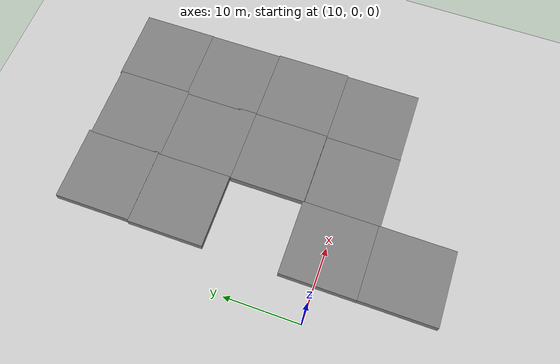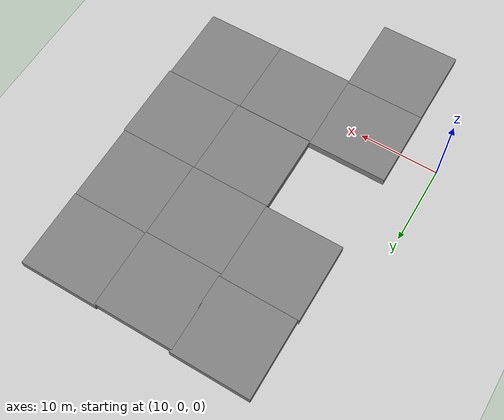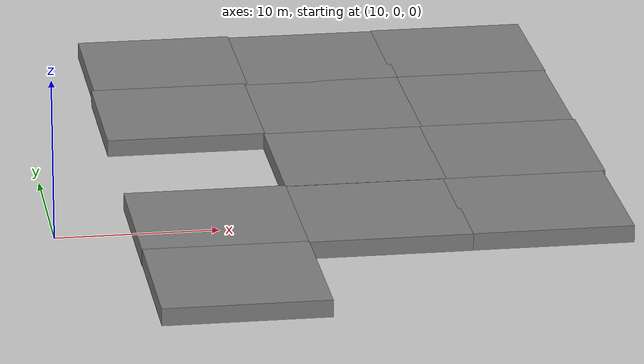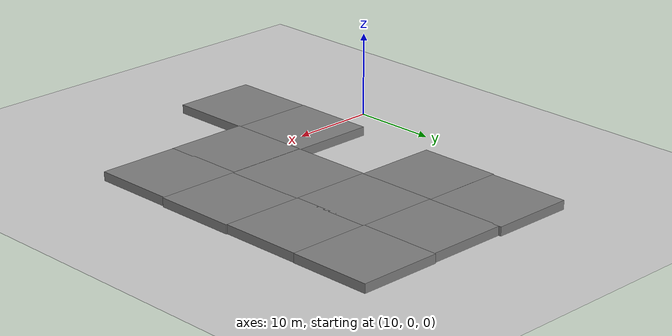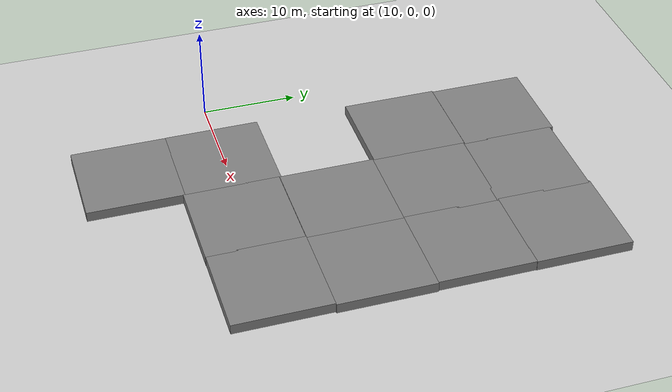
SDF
<sdf version="1.7">
 <world name="default">
  <model name="ground_plane">
   <static>1</static>
   <link name="link">
    <collision name="collision">
     <geometry><plane><normal>0 0 1</normal><size>100 100</size></plane></geometry>
     <surface>
      <contact><collide_bitmask>65535</collide_bitmask></contact>
      <friction><ode><mu>100</mu><mu2>50</mu2></ode></friction>
     </surface>
    </collision>
    <visual name="visual">
     <cast_shadows>0</cast_shadows>
     <geometry><plane><normal>0 0 1</normal><size>100 100</size></plane></geometry>
     <material>
      <script><uri>file://media/materials/scripts/gazebo.material</uri><name>Gazebo/Grey</name></script>
     </material>
    </visual>
   </link>
  </model>
  <model name="farm_clone_0_clone_1_clone_1_clone_17">
   <link name="link">
    <inertial>
     <mass>1</mass>
     <inertia><ixx>1</ixx><ixy>0</ixy><ixz>0</ixz><iyy>1</iyy><iyz>0</iyz><izz>1</izz></inertia>
    </inertial>
    <visual name="visual_1">
     <pose>2 2.5 0 0 -0 0</pose>
     <cast_shadows>0</cast_shadows>
     <geometry><box><size>10 10 2</size></box></geometry>
     <material>
      <script>
       <uri>model://mud_box/materials/scripts</uri>
       <uri>model://mud_box/materials/textures</uri>
       <name>vrc/mud</name>
      </script>
      <shader type="pixel"><normal_map>__default__</normal_map></shader>
      <ambient>0.5 0.5 0.5 1</ambient>
      <diffuse>0.5 0.5 0.5 1</diffuse>
      <specular>0.2 0.2 0.2 1</specular>
      <emissive>0 0 0 1</emissive>
     </material>
    </visual>
    <visual name="visual_2">
     <pose>2 2.5 0 0 -0 0</pose>
     <cast_shadows>0</cast_shadows>
     <geometry><box><size>10 10 2</size></box></geometry>
     <material>
      <script>
       <uri>model://mud_box/materials/scripts</uri>
       <uri>model://mud_box/materials/textures</uri>
       <name>vrc/mud</name>
      </script>
      <shader type="pixel"><normal_map>__default__</normal_map></shader>
      <ambient>0.5 0.5 0.5 1</ambient>
      <diffuse>0.5 0.5 0.5 1</diffuse>
      <specular>0.2 0.2 0.2 1</specular>
      <emissive>0 0 0 1</emissive>
     </material>
    </visual>
    <visual name="visual_4">
     <pose>2 2.5 0 0 -0 0</pose>
     <cast_shadows>0</cast_shadows>
     <geometry><box><size>10 10 2</size></box></geometry>
     <material>
      <script>
       <uri>model://mud_box/materials/scripts</uri>
       <uri>model://mud_box/materials/textures</uri>
       <name>vrc/mud</name>
      </script>
      <shader type="pixel"><normal_map>__default__</normal_map></shader>
      <ambient>0.5 0.5 0.5 1</ambient>
      <diffuse>0.5 0.5 0.5 1</diffuse>
      <specular>0.2 0.2 0.2 1</specular>
      <emissive>0 0 0 1</emissive>
     </material>
    </visual>
    <visual name="visual_3">
     <pose>2 2.5 0 0 -0 0</pose>
     <cast_shadows>0</cast_shadows>
     <geometry><box><size>10 10 2</size></box></geometry>
     <material>
      <script>
       <uri>model://mud_box/materials/scripts</uri>
       <uri>model://mud_box/materials/textures</uri>
       <name>vrc/mud</name>
      </script>
      <shader type="pixel"><normal_map>__default__</normal_map></shader>
      <ambient>0.5 0.5 0.5 1</ambient>
      <diffuse>0.5 0.5 0.5 1</diffuse>
      <specular>0.2 0.2 0.2 1</specular>
      <emissive>0 0 0 1</emissive>
     </material>
    </visual>
    <collision name="collision">
     <laser_retro>0.3</laser_retro>
     <pose>2 2.5 0 0 -0 0</pose>
     <geometry><box><size>100 100 2</size></box></geometry>
     <surface>
      <friction>
       <ode><mu>1.2</mu><mu2>1.2</mu2><fdir1>0 0 0</fdir1><slip1>0.01</slip1><slip2>0.01</slip2></ode>
       <torsional>
        <coefficient>0.05</coefficient>
        <patch_radius>0.08</patch_radius>
        <surface_radius>0.05</surface_radius>
        <use_patch_radius>1</use_patch_radius>
        <ode><slip>0</slip></ode>
       </torsional>
      </friction>
      <bounce><restitution_coefficient>0</restitution_coefficient><threshold>1</threshold></bounce>
      <contact>
       <collide_without_contact>0</collide_without_contact>
       <collide_without_contact_bitmask>1</collide_without_contact_bitmask>
       <collide_bitmask>1</collide_bitmask>
       <ode>
        <soft_cfm>0</soft_cfm>
        <soft_erp>1</soft_erp>
        <kp>1e+07</kp>
        <kd>5000</kd>
        <max_vel>0.001</max_vel>
        <min_depth>0.0005</min_depth>
       </ode>
       <bullet>
        <split_impulse>1</split_impulse>
        <split_impulse_penetration_threshold>-0.01</split_impulse_penetration_threshold>
        <soft_cfm>0</soft_cfm>
        <soft_erp>1</soft_erp>
        <kp>1e+07</kp>
        <kd>5000</kd>
       </bullet>
      </contact>
     </surface>
    </collision>
   </link>
   <static>1</static>
   <pose>17.7273 -12.8228 0 0 -0 0</pose>
  </model>
  <model name="farm_clone_0_clone_1_clone_1_clone_18">
   <link name="link">
    <inertial>
     <mass>1</mass>
     <inertia><ixx>1</ixx><ixy>0</ixy><ixz>0</ixz><iyy>1</iyy><iyz>0</iyz><izz>1</izz></inertia>
    </inertial>
    <visual name="visual_1">
     <pose>2 2.5 0 0 -0 0</pose>
     <cast_shadows>0</cast_shadows>
     <geometry><box><size>10 10 2</size></box></geometry>
     <material>
      <script>
       <uri>model://mud_box/materials/scripts</uri>
       <uri>model://mud_box/materials/textures</uri>
       <name>vrc/mud</name>
      </script>
      <shader type="pixel"><normal_map>__default__</normal_map></shader>
      <ambient>0.5 0.5 0.5 1</ambient>
      <diffuse>0.5 0.5 0.5 1</diffuse>
      <specular>0.2 0.2 0.2 1</specular>
      <emissive>0 0 0 1</emissive>
     </material>
    </visual>
    <visual name="visual_2">
     <pose>2 2.5 0 0 -0 0</pose>
     <cast_shadows>0</cast_shadows>
     <geometry><box><size>10 10 2</size></box></geometry>
     <material>
      <script>
       <uri>model://mud_box/materials/scripts</uri>
       <uri>model://mud_box/materials/textures</uri>
       <name>vrc/mud</name>
      </script>
      <shader type="pixel"><normal_map>__default__</normal_map></shader>
      <ambient>0.5 0.5 0.5 1</ambient>
      <diffuse>0.5 0.5 0.5 1</diffuse>
      <specular>0.2 0.2 0.2 1</specular>
      <emissive>0 0 0 1</emissive>
     </material>
    </visual>
    <visual name="visual_4">
     <pose>2 2.5 0 0 -0 0</pose>
     <cast_shadows>0</cast_shadows>
     <geometry><box><size>10 10 2</size></box></geometry>
     <material>
      <script>
       <uri>model://mud_box/materials/scripts</uri>
       <uri>model://mud_box/materials/textures</uri>
       <name>vrc/mud</name>
      </script>
      <shader type="pixel"><normal_map>__default__</normal_map></shader>
      <ambient>0.5 0.5 0.5 1</ambient>
      <diffuse>0.5 0.5 0.5 1</diffuse>
      <specular>0.2 0.2 0.2 1</specular>
      <emissive>0 0 0 1</emissive>
     </material>
    </visual>
    <visual name="visual_3">
     <pose>2 2.5 0 0 -0 0</pose>
     <cast_shadows>0</cast_shadows>
     <geometry><box><size>10 10 2</size></box></geometry>
     <material>
      <script>
       <uri>model://mud_box/materials/scripts</uri>
       <uri>model://mud_box/materials/textures</uri>
       <name>vrc/mud</name>
      </script>
      <shader type="pixel"><normal_map>__default__</normal_map></shader>
      <ambient>0.5 0.5 0.5 1</ambient>
      <diffuse>0.5 0.5 0.5 1</diffuse>
      <specular>0.2 0.2 0.2 1</specular>
      <emissive>0 0 0 1</emissive>
     </material>
    </visual>
    <collision name="collision">
     <laser_retro>0.3</laser_retro>
     <pose>2 2.5 0 0 -0 0</pose>
     <geometry><box><size>100 100 2</size></box></geometry>
     <surface>
      <friction>
       <ode><mu>1.2</mu><mu2>1.2</mu2><fdir1>0 0 0</fdir1><slip1>0.01</slip1><slip2>0.01</slip2></ode>
       <torsional>
        <coefficient>0.05</coefficient>
        <patch_radius>0.08</patch_radius>
        <surface_radius>0.05</surface_radius>
        <use_patch_radius>1</use_patch_radius>
        <ode><slip>0</slip></ode>
       </torsional>
      </friction>
      <bounce><restitution_coefficient>0</restitution_coefficient><threshold>1</threshold></bounce>
      <contact>
       <collide_without_contact>0</collide_without_contact>
       <collide_without_contact_bitmask>1</collide_without_contact_bitmask>
       <collide_bitmask>1</collide_bitmask>
       <ode>
        <soft_cfm>0</soft_cfm>
        <soft_erp>1</soft_erp>
        <kp>1e+07</kp>
        <kd>5000</kd>
        <max_vel>0.001</max_vel>
        <min_depth>0.0005</min_depth>
       </ode>
       <bullet>
        <split_impulse>1</split_impulse>
        <split_impulse_penetration_threshold>-0.01</split_impulse_penetration_threshold>
        <soft_cfm>0</soft_cfm>
        <soft_erp>1</soft_erp>
        <kp>1e+07</kp>
        <kd>5000</kd>
       </bullet>
      </contact>
     </surface>
    </collision>
   </link>
   <static>1</static>
   <pose>17.6999 -2.85294 0 0 -0 0</pose>
  </model>
  <model name="farm_clone_0_clone_1_clone_1_clone_24">
   <link name="link">
    <inertial>
     <mass>1</mass>
     <inertia><ixx>1</ixx><ixy>0</ixy><ixz>0</ixz><iyy>1</iyy><iyz>0</iyz><izz>1</izz></inertia>
    </inertial>
    <visual name="visual_1">
     <pose>2 2.5 0 0 -0 0</pose>
     <cast_shadows>0</cast_shadows>
     <geometry><box><size>10 10 2</size></box></geometry>
     <material>
      <script>
       <uri>model://mud_box/materials/scripts</uri>
       <uri>model://mud_box/materials/textures</uri>
       <name>vrc/mud</name>
      </script>
      <shader type="pixel"><normal_map>__default__</normal_map></shader>
      <ambient>0.5 0.5 0.5 1</ambient>
      <diffuse>0.5 0.5 0.5 1</diffuse>
      <specular>0.2 0.2 0.2 1</specular>
      <emissive>0 0 0 1</emissive>
     </material>
    </visual>
    <visual name="visual_2">
     <pose>2 2.5 0 0 -0 0</pose>
     <cast_shadows>0</cast_shadows>
     <geometry><box><size>10 10 2</size></box></geometry>
     <material>
      <script>
       <uri>model://mud_box/materials/scripts</uri>
       <uri>model://mud_box/materials/textures</uri>
       <name>vrc/mud</name>
      </script>
      <shader type="pixel"><normal_map>__default__</normal_map></shader>
      <ambient>0.5 0.5 0.5 1</ambient>
      <diffuse>0.5 0.5 0.5 1</diffuse>
      <specular>0.2 0.2 0.2 1</specular>
      <emissive>0 0 0 1</emissive>
     </material>
    </visual>
    <visual name="visual_4">
     <pose>2 2.5 0 0 -0 0</pose>
     <cast_shadows>0</cast_shadows>
     <geometry><box><size>10 10 2</size></box></geometry>
     <material>
      <script>
       <uri>model://mud_box/materials/scripts</uri>
       <uri>model://mud_box/materials/textures</uri>
       <name>vrc/mud</name>
      </script>
      <shader type="pixel"><normal_map>__default__</normal_map></shader>
      <ambient>0.5 0.5 0.5 1</ambient>
      <diffuse>0.5 0.5 0.5 1</diffuse>
      <specular>0.2 0.2 0.2 1</specular>
      <emissive>0 0 0 1</emissive>
     </material>
    </visual>
    <visual name="visual_3">
     <pose>2 2.5 0 0 -0 0</pose>
     <cast_shadows>0</cast_shadows>
     <geometry><box><size>10 10 2</size></box></geometry>
     <material>
      <script>
       <uri>model://mud_box/materials/scripts</uri>
       <uri>model://mud_box/materials/textures</uri>
       <name>vrc/mud</name>
      </script>
      <shader type="pixel"><normal_map>__default__</normal_map></shader>
      <ambient>0.5 0.5 0.5 1</ambient>
      <diffuse>0.5 0.5 0.5 1</diffuse>
      <specular>0.2 0.2 0.2 1</specular>
      <emissive>0 0 0 1</emissive>
     </material>
    </visual>
    <collision name="collision">
     <laser_retro>0.3</laser_retro>
     <pose>2 2.5 0 0 -0 0</pose>
     <geometry><box><size>100 100 2</size></box></geometry>
     <surface>
      <friction>
       <ode><mu>1.2</mu><mu2>1.2</mu2><fdir1>0 0 0</fdir1><slip1>0.01</slip1><slip2>0.01</slip2></ode>
       <torsional>
        <coefficient>0.05</coefficient>
        <patch_radius>0.08</patch_radius>
        <surface_radius>0.05</surface_radius>
        <use_patch_radius>1</use_patch_radius>
        <ode><slip>0</slip></ode>
       </torsional>
      </friction>
      <bounce><restitution_coefficient>0</restitution_coefficient><threshold>1</threshold></bounce>
      <contact>
       <collide_without_contact>0</collide_without_contact>
       <collide_without_contact_bitmask>1</collide_without_contact_bitmask>
       <collide_bitmask>1</collide_bitmask>
       <ode>
        <soft_cfm>0</soft_cfm>
        <soft_erp>1</soft_erp>
        <kp>1e+07</kp>
        <kd>5000</kd>
        <max_vel>0.001</max_vel>
        <min_depth>0.0005</min_depth>
       </ode>
       <bullet>
        <split_impulse>1</split_impulse>
        <split_impulse_penetration_threshold>-0.01</split_impulse_penetration_threshold>
        <soft_cfm>0</soft_cfm>
        <soft_erp>1</soft_erp>
        <kp>1e+07</kp>
        <kd>5000</kd>
       </bullet>
      </contact>
     </surface>
    </collision>
   </link>
   <static>1</static>
   <pose>17.7805 17.0672 0 0 -0 0</pose>
  </model>
  <model name="farm_clone_0_clone_1_clone_1_clone_40">
   <link name="link">
    <inertial>
     <mass>1</mass>
     <inertia><ixx>1</ixx><ixy>0</ixy><ixz>0</ixz><iyy>1</iyy><iyz>0</iyz><izz>1</izz></inertia>
    </inertial>
    <visual name="visual_1">
     <pose>2 2.5 0 0 -0 0</pose>
     <cast_shadows>0</cast_shadows>
     <geometry><box><size>10 10 2</size></box></geometry>
     <material>
      <script>
       <uri>model://mud_box/materials/scripts</uri>
       <uri>model://mud_box/materials/textures</uri>
       <name>vrc/mud</name>
      </script>
      <shader type="pixel"><normal_map>__default__</normal_map></shader>
      <ambient>0.5 0.5 0.5 1</ambient>
      <diffuse>0.5 0.5 0.5 1</diffuse>
      <specular>0.2 0.2 0.2 1</specular>
      <emissive>0 0 0 1</emissive>
     </material>
    </visual>
    <visual name="visual_2">
     <pose>2 2.5 0 0 -0 0</pose>
     <cast_shadows>0</cast_shadows>
     <geometry><box><size>10 10 2</size></box></geometry>
     <material>
      <script>
       <uri>model://mud_box/materials/scripts</uri>
       <uri>model://mud_box/materials/textures</uri>
       <name>vrc/mud</name>
      </script>
      <shader type="pixel"><normal_map>__default__</normal_map></shader>
      <ambient>0.5 0.5 0.5 1</ambient>
      <diffuse>0.5 0.5 0.5 1</diffuse>
      <specular>0.2 0.2 0.2 1</specular>
      <emissive>0 0 0 1</emissive>
     </material>
    </visual>
    <visual name="visual_4">
     <pose>2 2.5 0 0 -0 0</pose>
     <cast_shadows>0</cast_shadows>
     <geometry><box><size>10 10 2</size></box></geometry>
     <material>
      <script>
       <uri>model://mud_box/materials/scripts</uri>
       <uri>model://mud_box/materials/textures</uri>
       <name>vrc/mud</name>
      </script>
      <shader type="pixel"><normal_map>__default__</normal_map></shader>
      <ambient>0.5 0.5 0.5 1</ambient>
      <diffuse>0.5 0.5 0.5 1</diffuse>
      <specular>0.2 0.2 0.2 1</specular>
      <emissive>0 0 0 1</emissive>
     </material>
    </visual>
    <visual name="visual_3">
     <pose>2 2.5 0 0 -0 0</pose>
     <cast_shadows>0</cast_shadows>
     <geometry><box><size>10 10 2</size></box></geometry>
     <material>
      <script>
       <uri>model://mud_box/materials/scripts</uri>
       <uri>model://mud_box/materials/textures</uri>
       <name>vrc/mud</name>
      </script>
      <shader type="pixel"><normal_map>__default__</normal_map></shader>
      <ambient>0.5 0.5 0.5 1</ambient>
      <diffuse>0.5 0.5 0.5 1</diffuse>
      <specular>0.2 0.2 0.2 1</specular>
      <emissive>0 0 0 1</emissive>
     </material>
    </visual>
    <collision name="collision">
     <laser_retro>0.3</laser_retro>
     <pose>2 2.5 0 0 -0 0</pose>
     <geometry><box><size>100 100 2</size></box></geometry>
     <surface>
      <friction>
       <ode><mu>1.2</mu><mu2>1.2</mu2><fdir1>0 0 0</fdir1><slip1>0.01</slip1><slip2>0.01</slip2></ode>
       <torsional>
        <coefficient>0.05</coefficient>
        <patch_radius>0.08</patch_radius>
        <surface_radius>0.05</surface_radius>
        <use_patch_radius>1</use_patch_radius>
        <ode><slip>0</slip></ode>
       </torsional>
      </friction>
      <bounce><restitution_coefficient>0</restitution_coefficient><threshold>1</threshold></bounce>
      <contact>
       <collide_without_contact>0</collide_without_contact>
       <collide_without_contact_bitmask>1</collide_without_contact_bitmask>
       <collide_bitmask>1</collide_bitmask>
       <ode>
        <soft_cfm>0</soft_cfm>
        <soft_erp>1</soft_erp>
        <kp>1e+07</kp>
        <kd>5000</kd>
        <max_vel>0.001</max_vel>
        <min_depth>0.0005</min_depth>
       </ode>
       <bullet>
        <split_impulse>1</split_impulse>
        <split_impulse_penetration_threshold>-0.01</split_impulse_penetration_threshold>
        <soft_cfm>0</soft_cfm>
        <soft_erp>1</soft_erp>
        <kp>1e+07</kp>
        <kd>5000</kd>
       </bullet>
      </contact>
     </surface>
    </collision>
   </link>
   <static>1</static>
   <pose>27.6282 -3.05303 0 0 -0 0</pose>
  </model>
  <model name="farm_clone_0_clone_1_clone_1_clone_41">
   <link name="link">
    <inertial>
     <mass>1</mass>
     <inertia><ixx>1</ixx><ixy>0</ixy><ixz>0</ixz><iyy>1</iyy><iyz>0</iyz><izz>1</izz></inertia>
    </inertial>
    <visual name="visual_1">
     <pose>2 2.5 0 0 -0 0</pose>
     <cast_shadows>0</cast_shadows>
     <geometry><box><size>10 10 2</size></box></geometry>
     <material>
      <script>
       <uri>model://mud_box/materials/scripts</uri>
       <uri>model://mud_box/materials/textures</uri>
       <name>vrc/mud</name>
      </script>
      <shader type="pixel"><normal_map>__default__</normal_map></shader>
      <ambient>0.5 0.5 0.5 1</ambient>
      <diffuse>0.5 0.5 0.5 1</diffuse>
      <specular>0.2 0.2 0.2 1</specular>
      <emissive>0 0 0 1</emissive>
     </material>
    </visual>
    <visual name="visual_2">
     <pose>2 2.5 0 0 -0 0</pose>
     <cast_shadows>0</cast_shadows>
     <geometry><box><size>10 10 2</size></box></geometry>
     <material>
      <script>
       <uri>model://mud_box/materials/scripts</uri>
       <uri>model://mud_box/materials/textures</uri>
       <name>vrc/mud</name>
      </script>
      <shader type="pixel"><normal_map>__default__</normal_map></shader>
      <ambient>0.5 0.5 0.5 1</ambient>
      <diffuse>0.5 0.5 0.5 1</diffuse>
      <specular>0.2 0.2 0.2 1</specular>
      <emissive>0 0 0 1</emissive>
     </material>
    </visual>
    <visual name="visual_4">
     <pose>2 2.5 0 0 -0 0</pose>
     <cast_shadows>0</cast_shadows>
     <geometry><box><size>10 10 2</size></box></geometry>
     <material>
      <script>
       <uri>model://mud_box/materials/scripts</uri>
       <uri>model://mud_box/materials/textures</uri>
       <name>vrc/mud</name>
      </script>
      <shader type="pixel"><normal_map>__default__</normal_map></shader>
      <ambient>0.5 0.5 0.5 1</ambient>
      <diffuse>0.5 0.5 0.5 1</diffuse>
      <specular>0.2 0.2 0.2 1</specular>
      <emissive>0 0 0 1</emissive>
     </material>
    </visual>
    <visual name="visual_3">
     <pose>2 2.5 0 0 -0 0</pose>
     <cast_shadows>0</cast_shadows>
     <geometry><box><size>10 10 2</size></box></geometry>
     <material>
      <script>
       <uri>model://mud_box/materials/scripts</uri>
       <uri>model://mud_box/materials/textures</uri>
       <name>vrc/mud</name>
      </script>
      <shader type="pixel"><normal_map>__default__</normal_map></shader>
      <ambient>0.5 0.5 0.5 1</ambient>
      <diffuse>0.5 0.5 0.5 1</diffuse>
      <specular>0.2 0.2 0.2 1</specular>
      <emissive>0 0 0 1</emissive>
     </material>
    </visual>
    <collision name="collision">
     <laser_retro>0.3</laser_retro>
     <pose>2 2.5 0 0 -0 0</pose>
     <geometry><box><size>100 100 2</size></box></geometry>
     <surface>
      <friction>
       <ode><mu>1.2</mu><mu2>1.2</mu2><fdir1>0 0 0</fdir1><slip1>0.01</slip1><slip2>0.01</slip2></ode>
       <torsional>
        <coefficient>0.05</coefficient>
        <patch_radius>0.08</patch_radius>
        <surface_radius>0.05</surface_radius>
        <use_patch_radius>1</use_patch_radius>
        <ode><slip>0</slip></ode>
       </torsional>
      </friction>
      <bounce><restitution_coefficient>0</restitution_coefficient><threshold>1</threshold></bounce>
      <contact>
       <collide_without_contact>0</collide_without_contact>
       <collide_without_contact_bitmask>1</collide_without_contact_bitmask>
       <collide_bitmask>1</collide_bitmask>
       <ode>
        <soft_cfm>0</soft_cfm>
        <soft_erp>1</soft_erp>
        <kp>1e+07</kp>
        <kd>5000</kd>
        <max_vel>0.001</max_vel>
        <min_depth>0.0005</min_depth>
       </ode>
       <bullet>
        <split_impulse>1</split_impulse>
        <split_impulse_penetration_threshold>-0.01</split_impulse_penetration_threshold>
        <soft_cfm>0</soft_cfm>
        <soft_erp>1</soft_erp>
        <kp>1e+07</kp>
        <kd>5000</kd>
       </bullet>
      </contact>
     </surface>
    </collision>
   </link>
   <static>1</static>
   <pose>37.4544 -3.01904 0 0 -0 0</pose>
  </model>
  <model name="farm_clone_0_clone_1_clone_1_clone_42">
   <link name="link">
    <inertial>
     <mass>1</mass>
     <inertia><ixx>1</ixx><ixy>0</ixy><ixz>0</ixz><iyy>1</iyy><iyz>0</iyz><izz>1</izz></inertia>
    </inertial>
    <visual name="visual_1">
     <pose>2 2.5 0 0 -0 0</pose>
     <cast_shadows>0</cast_shadows>
     <geometry><box><size>10 10 2</size></box></geometry>
     <material>
      <script>
       <uri>model://mud_box/materials/scripts</uri>
       <uri>model://mud_box/materials/textures</uri>
       <name>vrc/mud</name>
      </script>
      <shader type="pixel"><normal_map>__default__</normal_map></shader>
      <ambient>0.5 0.5 0.5 1</ambient>
      <diffuse>0.5 0.5 0.5 1</diffuse>
      <specular>0.2 0.2 0.2 1</specular>
      <emissive>0 0 0 1</emissive>
     </material>
    </visual>
    <visual name="visual_2">
     <pose>2 2.5 0 0 -0 0</pose>
     <cast_shadows>0</cast_shadows>
     <geometry><box><size>10 10 2</size></box></geometry>
     <material>
      <script>
       <uri>model://mud_box/materials/scripts</uri>
       <uri>model://mud_box/materials/textures</uri>
       <name>vrc/mud</name>
      </script>
      <shader type="pixel"><normal_map>__default__</normal_map></shader>
      <ambient>0.5 0.5 0.5 1</ambient>
      <diffuse>0.5 0.5 0.5 1</diffuse>
      <specular>0.2 0.2 0.2 1</specular>
      <emissive>0 0 0 1</emissive>
     </material>
    </visual>
    <visual name="visual_4">
     <pose>2 2.5 0 0 -0 0</pose>
     <cast_shadows>0</cast_shadows>
     <geometry><box><size>10 10 2</size></box></geometry>
     <material>
      <script>
       <uri>model://mud_box/materials/scripts</uri>
       <uri>model://mud_box/materials/textures</uri>
       <name>vrc/mud</name>
      </script>
      <shader type="pixel"><normal_map>__default__</normal_map></shader>
      <ambient>0.5 0.5 0.5 1</ambient>
      <diffuse>0.5 0.5 0.5 1</diffuse>
      <specular>0.2 0.2 0.2 1</specular>
      <emissive>0 0 0 1</emissive>
     </material>
    </visual>
    <visual name="visual_3">
     <pose>2 2.5 0 0 -0 0</pose>
     <cast_shadows>0</cast_shadows>
     <geometry><box><size>10 10 2</size></box></geometry>
     <material>
      <script>
       <uri>model://mud_box/materials/scripts</uri>
       <uri>model://mud_box/materials/textures</uri>
       <name>vrc/mud</name>
      </script>
      <shader type="pixel"><normal_map>__default__</normal_map></shader>
      <ambient>0.5 0.5 0.5 1</ambient>
      <diffuse>0.5 0.5 0.5 1</diffuse>
      <specular>0.2 0.2 0.2 1</specular>
      <emissive>0 0 0 1</emissive>
     </material>
    </visual>
    <collision name="collision">
     <laser_retro>0.3</laser_retro>
     <pose>2 2.5 0 0 -0 0</pose>
     <geometry><box><size>100 100 2</size></box></geometry>
     <surface>
      <friction>
       <ode><mu>1.2</mu><mu2>1.2</mu2><fdir1>0 0 0</fdir1><slip1>0.01</slip1><slip2>0.01</slip2></ode>
       <torsional>
        <coefficient>0.05</coefficient>
        <patch_radius>0.08</patch_radius>
        <surface_radius>0.05</surface_radius>
        <use_patch_radius>1</use_patch_radius>
        <ode><slip>0</slip></ode>
       </torsional>
      </friction>
      <bounce><restitution_coefficient>0</restitution_coefficient><threshold>1</threshold></bounce>
      <contact>
       <collide_without_contact>0</collide_without_contact>
       <collide_without_contact_bitmask>1</collide_without_contact_bitmask>
       <collide_bitmask>1</collide_bitmask>
       <ode>
        <soft_cfm>0</soft_cfm>
        <soft_erp>1</soft_erp>
        <kp>1e+07</kp>
        <kd>5000</kd>
        <max_vel>0.001</max_vel>
        <min_depth>0.0005</min_depth>
       </ode>
       <bullet>
        <split_impulse>1</split_impulse>
        <split_impulse_penetration_threshold>-0.01</split_impulse_penetration_threshold>
        <soft_cfm>0</soft_cfm>
        <soft_erp>1</soft_erp>
        <kp>1e+07</kp>
        <kd>5000</kd>
       </bullet>
      </contact>
     </surface>
    </collision>
   </link>
   <static>1</static>
   <pose>27.6622 6.9771 0 0 -0 0</pose>
  </model>
  <model name="farm_clone_0_clone_1_clone_1_clone_43">
   <link name="link">
    <inertial>
     <mass>1</mass>
     <inertia><ixx>1</ixx><ixy>0</ixy><ixz>0</ixz><iyy>1</iyy><iyz>0</iyz><izz>1</izz></inertia>
    </inertial>
    <visual name="visual_1">
     <pose>2 2.5 0 0 -0 0</pose>
     <cast_shadows>0</cast_shadows>
     <geometry><box><size>10 10 2</size></box></geometry>
     <material>
      <script>
       <uri>model://mud_box/materials/scripts</uri>
       <uri>model://mud_box/materials/textures</uri>
       <name>vrc/mud</name>
      </script>
      <shader type="pixel"><normal_map>__default__</normal_map></shader>
      <ambient>0.5 0.5 0.5 1</ambient>
      <diffuse>0.5 0.5 0.5 1</diffuse>
      <specular>0.2 0.2 0.2 1</specular>
      <emissive>0 0 0 1</emissive>
     </material>
    </visual>
    <visual name="visual_2">
     <pose>2 2.5 0 0 -0 0</pose>
     <cast_shadows>0</cast_shadows>
     <geometry><box><size>10 10 2</size></box></geometry>
     <material>
      <script>
       <uri>model://mud_box/materials/scripts</uri>
       <uri>model://mud_box/materials/textures</uri>
       <name>vrc/mud</name>
      </script>
      <shader type="pixel"><normal_map>__default__</normal_map></shader>
      <ambient>0.5 0.5 0.5 1</ambient>
      <diffuse>0.5 0.5 0.5 1</diffuse>
      <specular>0.2 0.2 0.2 1</specular>
      <emissive>0 0 0 1</emissive>
     </material>
    </visual>
    <visual name="visual_4">
     <pose>2 2.5 0 0 -0 0</pose>
     <cast_shadows>0</cast_shadows>
     <geometry><box><size>10 10 2</size></box></geometry>
     <material>
      <script>
       <uri>model://mud_box/materials/scripts</uri>
       <uri>model://mud_box/materials/textures</uri>
       <name>vrc/mud</name>
      </script>
      <shader type="pixel"><normal_map>__default__</normal_map></shader>
      <ambient>0.5 0.5 0.5 1</ambient>
      <diffuse>0.5 0.5 0.5 1</diffuse>
      <specular>0.2 0.2 0.2 1</specular>
      <emissive>0 0 0 1</emissive>
     </material>
    </visual>
    <visual name="visual_3">
     <pose>2 2.5 0 0 -0 0</pose>
     <cast_shadows>0</cast_shadows>
     <geometry><box><size>10 10 2</size></box></geometry>
     <material>
      <script>
       <uri>model://mud_box/materials/scripts</uri>
       <uri>model://mud_box/materials/textures</uri>
       <name>vrc/mud</name>
      </script>
      <shader type="pixel"><normal_map>__default__</normal_map></shader>
      <ambient>0.5 0.5 0.5 1</ambient>
      <diffuse>0.5 0.5 0.5 1</diffuse>
      <specular>0.2 0.2 0.2 1</specular>
      <emissive>0 0 0 1</emissive>
     </material>
    </visual>
    <collision name="collision">
     <laser_retro>0.3</laser_retro>
     <pose>2 2.5 0 0 -0 0</pose>
     <geometry><box><size>100 100 2</size></box></geometry>
     <surface>
      <friction>
       <ode><mu>1.2</mu><mu2>1.2</mu2><fdir1>0 0 0</fdir1><slip1>0.01</slip1><slip2>0.01</slip2></ode>
       <torsional>
        <coefficient>0.05</coefficient>
        <patch_radius>0.08</patch_radius>
        <surface_radius>0.05</surface_radius>
        <use_patch_radius>1</use_patch_radius>
        <ode><slip>0</slip></ode>
       </torsional>
      </friction>
      <bounce><restitution_coefficient>0</restitution_coefficient><threshold>1</threshold></bounce>
      <contact>
       <collide_without_contact>0</collide_without_contact>
       <collide_without_contact_bitmask>1</collide_without_contact_bitmask>
       <collide_bitmask>1</collide_bitmask>
       <ode>
        <soft_cfm>0</soft_cfm>
        <soft_erp>1</soft_erp>
        <kp>1e+07</kp>
        <kd>5000</kd>
        <max_vel>0.001</max_vel>
        <min_depth>0.0005</min_depth>
       </ode>
       <bullet>
        <split_impulse>1</split_impulse>
        <split_impulse_penetration_threshold>-0.01</split_impulse_penetration_threshold>
        <soft_cfm>0</soft_cfm>
        <soft_erp>1</soft_erp>
        <kp>1e+07</kp>
        <kd>5000</kd>
       </bullet>
      </contact>
     </surface>
    </collision>
   </link>
   <static>1</static>
   <pose>37.6244 6.9771 0 0 -0 0</pose>
  </model>
  <model name="farm_clone_0_clone_1_clone_1_clone_44">
   <link name="link">
    <inertial>
     <mass>1</mass>
     <inertia><ixx>1</ixx><ixy>0</ixy><ixz>0</ixz><iyy>1</iyy><iyz>0</iyz><izz>1</izz></inertia>
    </inertial>
    <visual name="visual_1">
     <pose>2 2.5 0 0 -0 0</pose>
     <cast_shadows>0</cast_shadows>
     <geometry><box><size>10 10 2</size></box></geometry>
     <material>
      <script>
       <uri>model://mud_box/materials/scripts</uri>
       <uri>model://mud_box/materials/textures</uri>
       <name>vrc/mud</name>
      </script>
      <shader type="pixel"><normal_map>__default__</normal_map></shader>
      <ambient>0.5 0.5 0.5 1</ambient>
      <diffuse>0.5 0.5 0.5 1</diffuse>
      <specular>0.2 0.2 0.2 1</specular>
      <emissive>0 0 0 1</emissive>
     </material>
    </visual>
    <visual name="visual_2">
     <pose>2 2.5 0 0 -0 0</pose>
     <cast_shadows>0</cast_shadows>
     <geometry><box><size>10 10 2</size></box></geometry>
     <material>
      <script>
       <uri>model://mud_box/materials/scripts</uri>
       <uri>model://mud_box/materials/textures</uri>
       <name>vrc/mud</name>
      </script>
      <shader type="pixel"><normal_map>__default__</normal_map></shader>
      <ambient>0.5 0.5 0.5 1</ambient>
      <diffuse>0.5 0.5 0.5 1</diffuse>
      <specular>0.2 0.2 0.2 1</specular>
      <emissive>0 0 0 1</emissive>
     </material>
    </visual>
    <visual name="visual_4">
     <pose>2 2.5 0 0 -0 0</pose>
     <cast_shadows>0</cast_shadows>
     <geometry><box><size>10 10 2</size></box></geometry>
     <material>
      <script>
       <uri>model://mud_box/materials/scripts</uri>
       <uri>model://mud_box/materials/textures</uri>
       <name>vrc/mud</name>
      </script>
      <shader type="pixel"><normal_map>__default__</normal_map></shader>
      <ambient>0.5 0.5 0.5 1</ambient>
      <diffuse>0.5 0.5 0.5 1</diffuse>
      <specular>0.2 0.2 0.2 1</specular>
      <emissive>0 0 0 1</emissive>
     </material>
    </visual>
    <visual name="visual_3">
     <pose>2 2.5 0 0 -0 0</pose>
     <cast_shadows>0</cast_shadows>
     <geometry><box><size>10 10 2</size></box></geometry>
     <material>
      <script>
       <uri>model://mud_box/materials/scripts</uri>
       <uri>model://mud_box/materials/textures</uri>
       <name>vrc/mud</name>
      </script>
      <shader type="pixel"><normal_map>__default__</normal_map></shader>
      <ambient>0.5 0.5 0.5 1</ambient>
      <diffuse>0.5 0.5 0.5 1</diffuse>
      <specular>0.2 0.2 0.2 1</specular>
      <emissive>0 0 0 1</emissive>
     </material>
    </visual>
    <collision name="collision">
     <laser_retro>0.3</laser_retro>
     <pose>2 2.5 0 0 -0 0</pose>
     <geometry><box><size>100 100 2</size></box></geometry>
     <surface>
      <friction>
       <ode><mu>1.2</mu><mu2>1.2</mu2><fdir1>0 0 0</fdir1><slip1>0.01</slip1><slip2>0.01</slip2></ode>
       <torsional>
        <coefficient>0.05</coefficient>
        <patch_radius>0.08</patch_radius>
        <surface_radius>0.05</surface_radius>
        <use_patch_radius>1</use_patch_radius>
        <ode><slip>0</slip></ode>
       </torsional>
      </friction>
      <bounce><restitution_coefficient>0</restitution_coefficient><threshold>1</threshold></bounce>
      <contact>
       <collide_without_contact>0</collide_without_contact>
       <collide_without_contact_bitmask>1</collide_without_contact_bitmask>
       <collide_bitmask>1</collide_bitmask>
       <ode>
        <soft_cfm>0</soft_cfm>
        <soft_erp>1</soft_erp>
        <kp>1e+07</kp>
        <kd>5000</kd>
        <max_vel>0.001</max_vel>
        <min_depth>0.0005</min_depth>
       </ode>
       <bullet>
        <split_impulse>1</split_impulse>
        <split_impulse_penetration_threshold>-0.01</split_impulse_penetration_threshold>
        <soft_cfm>0</soft_cfm>
        <soft_erp>1</soft_erp>
        <kp>1e+07</kp>
        <kd>5000</kd>
       </bullet>
      </contact>
     </surface>
    </collision>
   </link>
   <static>1</static>
   <pose>27.7447 16.9646 0 0 -0 0</pose>
  </model>
  <model name="farm_clone_0_clone_1_clone_1_clone_45">
   <link name="link">
    <inertial>
     <mass>1</mass>
     <inertia><ixx>1</ixx><ixy>0</ixy><ixz>0</ixz><iyy>1</iyy><iyz>0</iyz><izz>1</izz></inertia>
    </inertial>
    <visual name="visual_1">
     <pose>2 2.5 0 0 -0 0</pose>
     <cast_shadows>0</cast_shadows>
     <geometry><box><size>10 10 2</size></box></geometry>
     <material>
      <script>
       <uri>model://mud_box/materials/scripts</uri>
       <uri>model://mud_box/materials/textures</uri>
       <name>vrc/mud</name>
      </script>
      <shader type="pixel"><normal_map>__default__</normal_map></shader>
      <ambient>0.5 0.5 0.5 1</ambient>
      <diffuse>0.5 0.5 0.5 1</diffuse>
      <specular>0.2 0.2 0.2 1</specular>
      <emissive>0 0 0 1</emissive>
     </material>
    </visual>
    <visual name="visual_2">
     <pose>2 2.5 0 0 -0 0</pose>
     <cast_shadows>0</cast_shadows>
     <geometry><box><size>10 10 2</size></box></geometry>
     <material>
      <script>
       <uri>model://mud_box/materials/scripts</uri>
       <uri>model://mud_box/materials/textures</uri>
       <name>vrc/mud</name>
      </script>
      <shader type="pixel"><normal_map>__default__</normal_map></shader>
      <ambient>0.5 0.5 0.5 1</ambient>
      <diffuse>0.5 0.5 0.5 1</diffuse>
      <specular>0.2 0.2 0.2 1</specular>
      <emissive>0 0 0 1</emissive>
     </material>
    </visual>
    <visual name="visual_4">
     <pose>2 2.5 0 0 -0 0</pose>
     <cast_shadows>0</cast_shadows>
     <geometry><box><size>10 10 2</size></box></geometry>
     <material>
      <script>
       <uri>model://mud_box/materials/scripts</uri>
       <uri>model://mud_box/materials/textures</uri>
       <name>vrc/mud</name>
      </script>
      <shader type="pixel"><normal_map>__default__</normal_map></shader>
      <ambient>0.5 0.5 0.5 1</ambient>
      <diffuse>0.5 0.5 0.5 1</diffuse>
      <specular>0.2 0.2 0.2 1</specular>
      <emissive>0 0 0 1</emissive>
     </material>
    </visual>
    <visual name="visual_3">
     <pose>2 2.5 0 0 -0 0</pose>
     <cast_shadows>0</cast_shadows>
     <geometry><box><size>10 10 2</size></box></geometry>
     <material>
      <script>
       <uri>model://mud_box/materials/scripts</uri>
       <uri>model://mud_box/materials/textures</uri>
       <name>vrc/mud</name>
      </script>
      <shader type="pixel"><normal_map>__default__</normal_map></shader>
      <ambient>0.5 0.5 0.5 1</ambient>
      <diffuse>0.5 0.5 0.5 1</diffuse>
      <specular>0.2 0.2 0.2 1</specular>
      <emissive>0 0 0 1</emissive>
     </material>
    </visual>
    <collision name="collision">
     <laser_retro>0.3</laser_retro>
     <pose>2 2.5 0 0 -0 0</pose>
     <geometry><box><size>100 100 2</size></box></geometry>
     <surface>
      <friction>
       <ode><mu>1.2</mu><mu2>1.2</mu2><fdir1>0 0 0</fdir1><slip1>0.01</slip1><slip2>0.01</slip2></ode>
       <torsional>
        <coefficient>0.05</coefficient>
        <patch_radius>0.08</patch_radius>
        <surface_radius>0.05</surface_radius>
        <use_patch_radius>1</use_patch_radius>
        <ode><slip>0</slip></ode>
       </torsional>
      </friction>
      <bounce><restitution_coefficient>0</restitution_coefficient><threshold>1</threshold></bounce>
      <contact>
       <collide_without_contact>0</collide_without_contact>
       <collide_without_contact_bitmask>1</collide_without_contact_bitmask>
       <collide_bitmask>1</collide_bitmask>
       <ode>
        <soft_cfm>0</soft_cfm>
        <soft_erp>1</soft_erp>
        <kp>1e+07</kp>
        <kd>5000</kd>
        <max_vel>0.001</max_vel>
        <min_depth>0.0005</min_depth>
       </ode>
       <bullet>
        <split_impulse>1</split_impulse>
        <split_impulse_penetration_threshold>-0.01</split_impulse_penetration_threshold>
        <soft_cfm>0</soft_cfm>
        <soft_erp>1</soft_erp>
        <kp>1e+07</kp>
        <kd>5000</kd>
       </bullet>
      </contact>
     </surface>
    </collision>
   </link>
   <static>1</static>
   <pose>37.5016 16.9646 0 0 -0 0</pose>
  </model>
  <model name="farm_clone_0_clone_1_clone_1_clone_46">
   <link name="link">
    <inertial>
     <mass>1</mass>
     <inertia><ixx>1</ixx><ixy>0</ixy><ixz>0</ixz><iyy>1</iyy><iyz>0</iyz><izz>1</izz></inertia>
    </inertial>
    <visual name="visual_1">
     <pose>2 2.5 0 0 -0 0</pose>
     <cast_shadows>0</cast_shadows>
     <geometry><box><size>10 10 2</size></box></geometry>
     <material>
      <script>
       <uri>model://mud_box/materials/scripts</uri>
       <uri>model://mud_box/materials/textures</uri>
       <name>vrc/mud</name>
      </script>
      <shader type="pixel"><normal_map>__default__</normal_map></shader>
      <ambient>0.5 0.5 0.5 1</ambient>
      <diffuse>0.5 0.5 0.5 1</diffuse>
      <specular>0.2 0.2 0.2 1</specular>
      <emissive>0 0 0 1</emissive>
     </material>
    </visual>
    <visual name="visual_2">
     <pose>2 2.5 0 0 -0 0</pose>
     <cast_shadows>0</cast_shadows>
     <geometry><box><size>10 10 2</size></box></geometry>
     <material>
      <script>
       <uri>model://mud_box/materials/scripts</uri>
       <uri>model://mud_box/materials/textures</uri>
       <name>vrc/mud</name>
      </script>
      <shader type="pixel"><normal_map>__default__</normal_map></shader>
      <ambient>0.5 0.5 0.5 1</ambient>
      <diffuse>0.5 0.5 0.5 1</diffuse>
      <specular>0.2 0.2 0.2 1</specular>
      <emissive>0 0 0 1</emissive>
     </material>
    </visual>
    <visual name="visual_4">
     <pose>2 2.5 0 0 -0 0</pose>
     <cast_shadows>0</cast_shadows>
     <geometry><box><size>10 10 2</size></box></geometry>
     <material>
      <script>
       <uri>model://mud_box/materials/scripts</uri>
       <uri>model://mud_box/materials/textures</uri>
       <name>vrc/mud</name>
      </script>
      <shader type="pixel"><normal_map>__default__</normal_map></shader>
      <ambient>0.5 0.5 0.5 1</ambient>
      <diffuse>0.5 0.5 0.5 1</diffuse>
      <specular>0.2 0.2 0.2 1</specular>
      <emissive>0 0 0 1</emissive>
     </material>
    </visual>
    <visual name="visual_3">
     <pose>2 2.5 0 0 -0 0</pose>
     <cast_shadows>0</cast_shadows>
     <geometry><box><size>10 10 2</size></box></geometry>
     <material>
      <script>
       <uri>model://mud_box/materials/scripts</uri>
       <uri>model://mud_box/materials/textures</uri>
       <name>vrc/mud</name>
      </script>
      <shader type="pixel"><normal_map>__default__</normal_map></shader>
      <ambient>0.5 0.5 0.5 1</ambient>
      <diffuse>0.5 0.5 0.5 1</diffuse>
      <specular>0.2 0.2 0.2 1</specular>
      <emissive>0 0 0 1</emissive>
     </material>
    </visual>
    <collision name="collision">
     <laser_retro>0.3</laser_retro>
     <pose>2 2.5 0 0 -0 0</pose>
     <geometry><box><size>100 100 2</size></box></geometry>
     <surface>
      <friction>
       <ode><mu>1.2</mu><mu2>1.2</mu2><fdir1>0 0 0</fdir1><slip1>0.01</slip1><slip2>0.01</slip2></ode>
       <torsional>
        <coefficient>0.05</coefficient>
        <patch_radius>0.08</patch_radius>
        <surface_radius>0.05</surface_radius>
        <use_patch_radius>1</use_patch_radius>
        <ode><slip>0</slip></ode>
       </torsional>
      </friction>
      <bounce><restitution_coefficient>0</restitution_coefficient><threshold>1</threshold></bounce>
      <contact>
       <collide_without_contact>0</collide_without_contact>
       <collide_without_contact_bitmask>1</collide_without_contact_bitmask>
       <collide_bitmask>1</collide_bitmask>
       <ode>
        <soft_cfm>0</soft_cfm>
        <soft_erp>1</soft_erp>
        <kp>1e+07</kp>
        <kd>5000</kd>
        <max_vel>0.001</max_vel>
        <min_depth>0.0005</min_depth>
       </ode>
       <bullet>
        <split_impulse>1</split_impulse>
        <split_impulse_penetration_threshold>-0.01</split_impulse_penetration_threshold>
        <soft_cfm>0</soft_cfm>
        <soft_erp>1</soft_erp>
        <kp>1e+07</kp>
        <kd>5000</kd>
       </bullet>
      </contact>
     </surface>
    </collision>
   </link>
   <static>1</static>
   <pose>37.5514 26.9206 0 0 -0 0</pose>
  </model>
  <model name="farm_clone_0_clone_1_clone_1_clone_47">
   <link name="link">
    <inertial>
     <mass>1</mass>
     <inertia><ixx>1</ixx><ixy>0</ixy><ixz>0</ixz><iyy>1</iyy><iyz>0</iyz><izz>1</izz></inertia>
    </inertial>
    <visual name="visual_1">
     <pose>2 2.5 0 0 -0 0</pose>
     <cast_shadows>0</cast_shadows>
     <geometry><box><size>10 10 2</size></box></geometry>
     <material>
      <script>
       <uri>model://mud_box/materials/scripts</uri>
       <uri>model://mud_box/materials/textures</uri>
       <name>vrc/mud</name>
      </script>
      <shader type="pixel"><normal_map>__default__</normal_map></shader>
      <ambient>0.5 0.5 0.5 1</ambient>
      <diffuse>0.5 0.5 0.5 1</diffuse>
      <specular>0.2 0.2 0.2 1</specular>
      <emissive>0 0 0 1</emissive>
     </material>
    </visual>
    <visual name="visual_2">
     <pose>2 2.5 0 0 -0 0</pose>
     <cast_shadows>0</cast_shadows>
     <geometry><box><size>10 10 2</size></box></geometry>
     <material>
      <script>
       <uri>model://mud_box/materials/scripts</uri>
       <uri>model://mud_box/materials/textures</uri>
       <name>vrc/mud</name>
      </script>
      <shader type="pixel"><normal_map>__default__</normal_map></shader>
      <ambient>0.5 0.5 0.5 1</ambient>
      <diffuse>0.5 0.5 0.5 1</diffuse>
      <specular>0.2 0.2 0.2 1</specular>
      <emissive>0 0 0 1</emissive>
     </material>
    </visual>
    <visual name="visual_4">
     <pose>2 2.5 0 0 -0 0</pose>
     <cast_shadows>0</cast_shadows>
     <geometry><box><size>10 10 2</size></box></geometry>
     <material>
      <script>
       <uri>model://mud_box/materials/scripts</uri>
       <uri>model://mud_box/materials/textures</uri>
       <name>vrc/mud</name>
      </script>
      <shader type="pixel"><normal_map>__default__</normal_map></shader>
      <ambient>0.5 0.5 0.5 1</ambient>
      <diffuse>0.5 0.5 0.5 1</diffuse>
      <specular>0.2 0.2 0.2 1</specular>
      <emissive>0 0 0 1</emissive>
     </material>
    </visual>
    <visual name="visual_3">
     <pose>2 2.5 0 0 -0 0</pose>
     <cast_shadows>0</cast_shadows>
     <geometry><box><size>10 10 2</size></box></geometry>
     <material>
      <script>
       <uri>model://mud_box/materials/scripts</uri>
       <uri>model://mud_box/materials/textures</uri>
       <name>vrc/mud</name>
      </script>
      <shader type="pixel"><normal_map>__default__</normal_map></shader>
      <ambient>0.5 0.5 0.5 1</ambient>
      <diffuse>0.5 0.5 0.5 1</diffuse>
      <specular>0.2 0.2 0.2 1</specular>
      <emissive>0 0 0 1</emissive>
     </material>
    </visual>
    <collision name="collision">
     <laser_retro>0.3</laser_retro>
     <pose>2 2.5 0 0 -0 0</pose>
     <geometry><box><size>100 100 2</size></box></geometry>
     <surface>
      <friction>
       <ode><mu>1.2</mu><mu2>1.2</mu2><fdir1>0 0 0</fdir1><slip1>0.01</slip1><slip2>0.01</slip2></ode>
       <torsional>
        <coefficient>0.05</coefficient>
        <patch_radius>0.08</patch_radius>
        <surface_radius>0.05</surface_radius>
        <use_patch_radius>1</use_patch_radius>
        <ode><slip>0</slip></ode>
       </torsional>
      </friction>
      <bounce><restitution_coefficient>0</restitution_coefficient><threshold>1</threshold></bounce>
      <contact>
       <collide_without_contact>0</collide_without_contact>
       <collide_without_contact_bitmask>1</collide_without_contact_bitmask>
       <collide_bitmask>1</collide_bitmask>
       <ode>
        <soft_cfm>0</soft_cfm>
        <soft_erp>1</soft_erp>
        <kp>1e+07</kp>
        <kd>5000</kd>
        <max_vel>0.001</max_vel>
        <min_depth>0.0005</min_depth>
       </ode>
       <bullet>
        <split_impulse>1</split_impulse>
        <split_impulse_penetration_threshold>-0.01</split_impulse_penetration_threshold>
        <soft_cfm>0</soft_cfm>
        <soft_erp>1</soft_erp>
        <kp>1e+07</kp>
        <kd>5000</kd>
       </bullet>
      </contact>
     </surface>
    </collision>
   </link>
   <static>1</static>
   <pose>27.7945 26.7713 0 0 -0 0</pose>
  </model>
  <model name="farm_clone_0_clone_1_clone_1_clone_48">
   <link name="link">
    <inertial>
     <mass>1</mass>
     <inertia><ixx>1</ixx><ixy>0</ixy><ixz>0</ixz><iyy>1</iyy><iyz>0</iyz><izz>1</izz></inertia>
    </inertial>
    <visual name="visual_1">
     <pose>2 2.5 0 0 -0 0</pose>
     <cast_shadows>0</cast_shadows>
     <geometry><box><size>10 10 2</size></box></geometry>
     <material>
      <script>
       <uri>model://mud_box/materials/scripts</uri>
       <uri>model://mud_box/materials/textures</uri>
       <name>vrc/mud</name>
      </script>
      <shader type="pixel"><normal_map>__default__</normal_map></shader>
      <ambient>0.5 0.5 0.5 1</ambient>
      <diffuse>0.5 0.5 0.5 1</diffuse>
      <specular>0.2 0.2 0.2 1</specular>
      <emissive>0 0 0 1</emissive>
     </material>
    </visual>
    <visual name="visual_2">
     <pose>2 2.5 0 0 -0 0</pose>
     <cast_shadows>0</cast_shadows>
     <geometry><box><size>10 10 2</size></box></geometry>
     <material>
      <script>
       <uri>model://mud_box/materials/scripts</uri>
       <uri>model://mud_box/materials/textures</uri>
       <name>vrc/mud</name>
      </script>
      <shader type="pixel"><normal_map>__default__</normal_map></shader>
      <ambient>0.5 0.5 0.5 1</ambient>
      <diffuse>0.5 0.5 0.5 1</diffuse>
      <specular>0.2 0.2 0.2 1</specular>
      <emissive>0 0 0 1</emissive>
     </material>
    </visual>
    <visual name="visual_4">
     <pose>2 2.5 0 0 -0 0</pose>
     <cast_shadows>0</cast_shadows>
     <geometry><box><size>10 10 2</size></box></geometry>
     <material>
      <script>
       <uri>model://mud_box/materials/scripts</uri>
       <uri>model://mud_box/materials/textures</uri>
       <name>vrc/mud</name>
      </script>
      <shader type="pixel"><normal_map>__default__</normal_map></shader>
      <ambient>0.5 0.5 0.5 1</ambient>
      <diffuse>0.5 0.5 0.5 1</diffuse>
      <specular>0.2 0.2 0.2 1</specular>
      <emissive>0 0 0 1</emissive>
     </material>
    </visual>
    <visual name="visual_3">
     <pose>2 2.5 0 0 -0 0</pose>
     <cast_shadows>0</cast_shadows>
     <geometry><box><size>10 10 2</size></box></geometry>
     <material>
      <script>
       <uri>model://mud_box/materials/scripts</uri>
       <uri>model://mud_box/materials/textures</uri>
       <name>vrc/mud</name>
      </script>
      <shader type="pixel"><normal_map>__default__</normal_map></shader>
      <ambient>0.5 0.5 0.5 1</ambient>
      <diffuse>0.5 0.5 0.5 1</diffuse>
      <specular>0.2 0.2 0.2 1</specular>
      <emissive>0 0 0 1</emissive>
     </material>
    </visual>
    <collision name="collision">
     <laser_retro>0.3</laser_retro>
     <pose>2 2.5 0 0 -0 0</pose>
     <geometry><box><size>100 100 2</size></box></geometry>
     <surface>
      <friction>
       <ode><mu>1.2</mu><mu2>1.2</mu2><fdir1>0 0 0</fdir1><slip1>0.01</slip1><slip2>0.01</slip2></ode>
       <torsional>
        <coefficient>0.05</coefficient>
        <patch_radius>0.08</patch_radius>
        <surface_radius>0.05</surface_radius>
        <use_patch_radius>1</use_patch_radius>
        <ode><slip>0</slip></ode>
       </torsional>
      </friction>
      <bounce><restitution_coefficient>0</restitution_coefficient><threshold>1</threshold></bounce>
      <contact>
       <collide_without_contact>0</collide_without_contact>
       <collide_without_contact_bitmask>1</collide_without_contact_bitmask>
       <collide_bitmask>1</collide_bitmask>
       <ode>
        <soft_cfm>0</soft_cfm>
        <soft_erp>1</soft_erp>
        <kp>1e+07</kp>
        <kd>5000</kd>
        <max_vel>0.001</max_vel>
        <min_depth>0.0005</min_depth>
       </ode>
       <bullet>
        <split_impulse>1</split_impulse>
        <split_impulse_penetration_threshold>-0.01</split_impulse_penetration_threshold>
        <soft_cfm>0</soft_cfm>
        <soft_erp>1</soft_erp>
        <kp>1e+07</kp>
        <kd>5000</kd>
       </bullet>
      </contact>
     </surface>
    </collision>
   </link>
   <static>1</static>
   <pose>17.938 27.0699 0 0 -0 0</pose>
  </model>
 </world>
</sdf>
